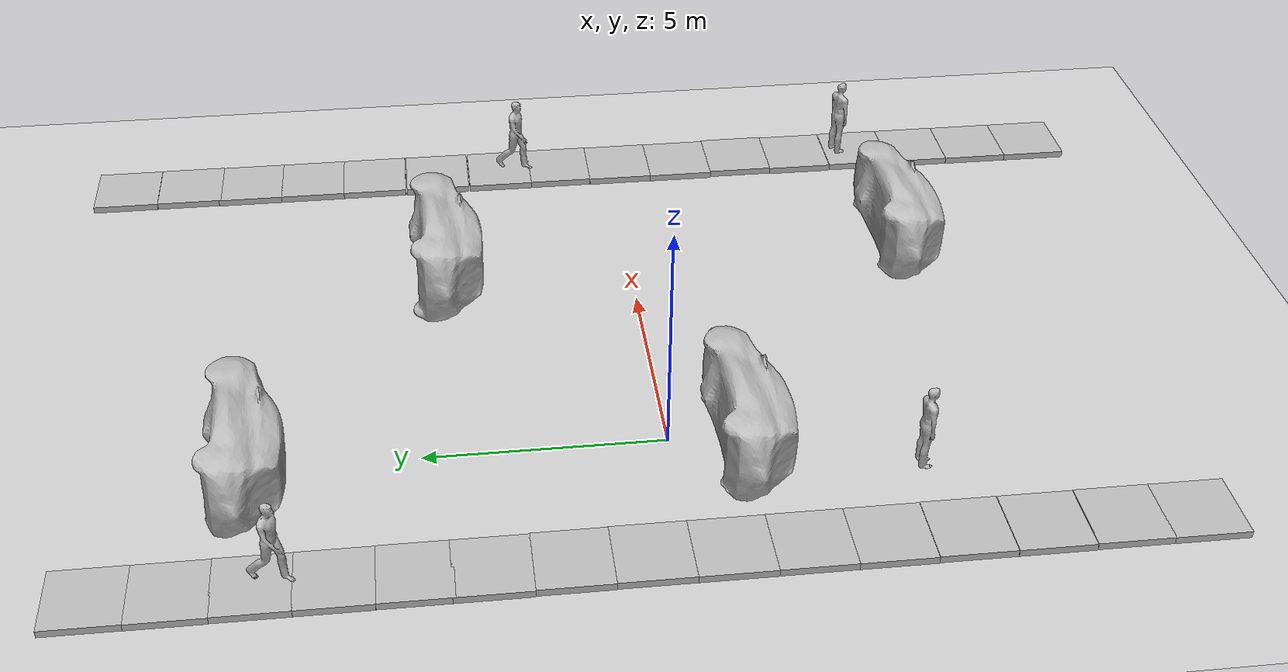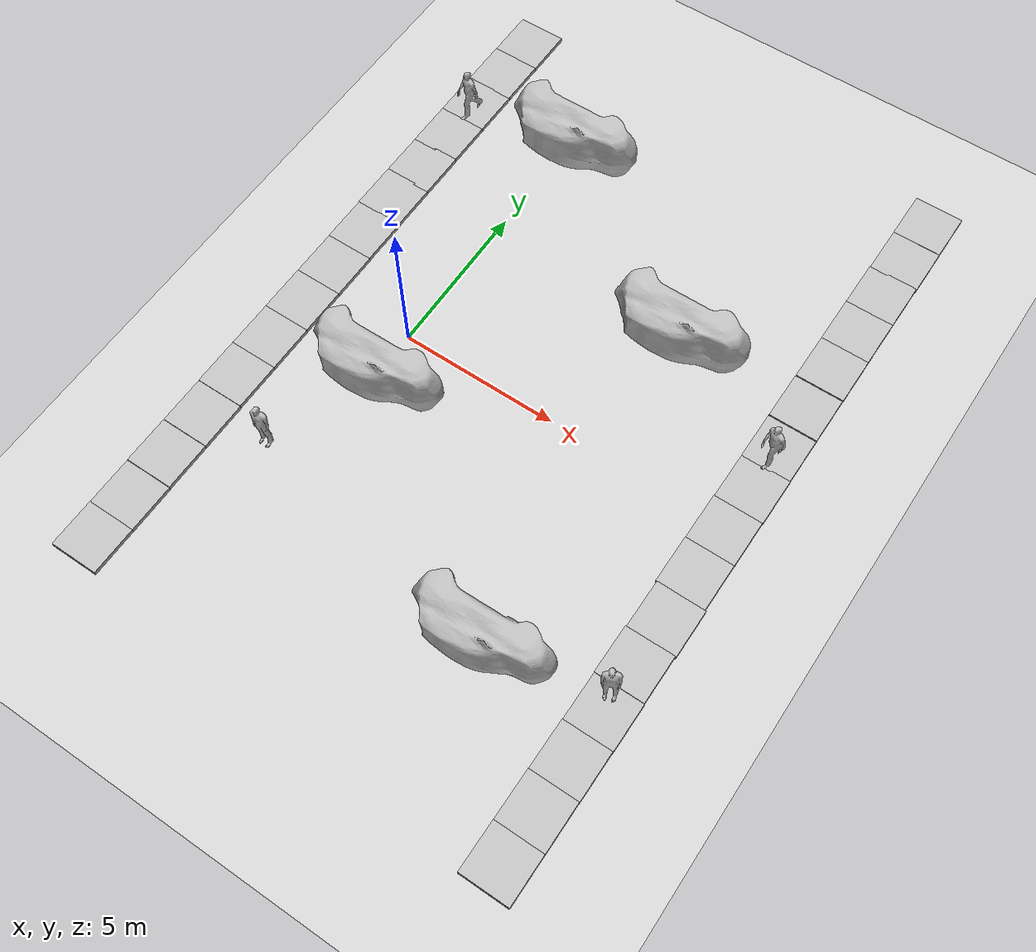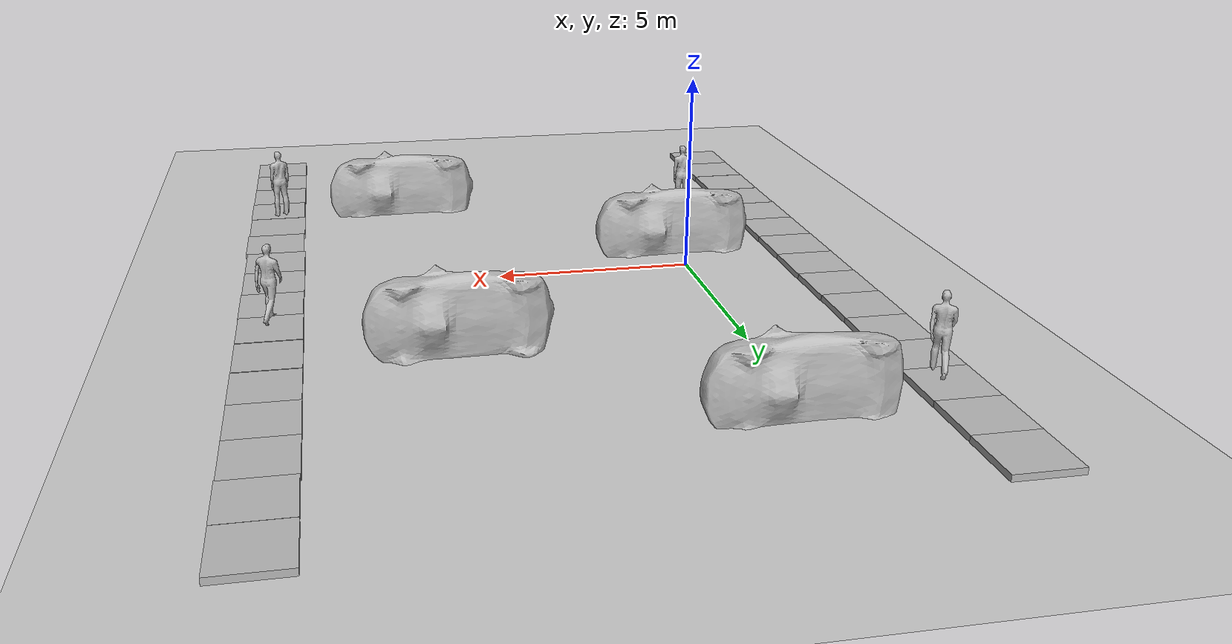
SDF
<sdf version="1.7">
 <world name="default">
  <light name="sun" type="directional">
   <pose>0 0 10 0 -0 0</pose>
   <diffuse>0.8 0.8 0.8 1</diffuse>
   <specular>0.2 0.2 0.2 1</specular>
   <attenuation>
    <range>1000</range>
    <constant>0.9</constant>
    <linear>0.01</linear>
    <quadratic>0.001</quadratic>
   </attenuation>
   <direction>-0.5 0.1 -0.9</direction>
   <spot><inner_angle>0</inner_angle><outer_angle>0</outer_angle><falloff>0</falloff></spot>
  </light>
  <model name="ground_plane">
   <static>1</static>
   <link name="link">
    <collision name="collision">
     <geometry><plane><normal>0 0 1</normal><size>100 100</size></plane></geometry>
     <surface>
      <contact><collide_bitmask>65535</collide_bitmask></contact>
      <friction><ode><mu>100</mu><mu2>50</mu2></ode></friction>
     </surface>
    </collision>
    <visual name="visual">
     <cast_shadows>0</cast_shadows>
     <geometry><plane><normal>0 0 1</normal><size>100 100</size></plane></geometry>
     <material>
      <script><uri>file://media/materials/scripts/gazebo.material</uri><name>Gazebo/Grey</name></script>
     </material>
    </visual>
   </link>
  </model>
  <gravity>0 0 -9.8</gravity>
  <magnetic_field>6e-06 2.3e-05 -4.2e-05</magnetic_field>
  <atmosphere type="adiabatic"/>
  <physics type="ode">
   <max_step_size>0.001</max_step_size>
   <real_time_factor>1</real_time_factor>
   <real_time_update_rate>1000</real_time_update_rate>
  </physics>
  <scene><ambient>0.4 0.4 0.4 1</ambient><background>0.7 0.7 0.7 1</background><shadows>1</shadows></scene>
  <audio><device>default</device></audio>
  <spherical_coordinates>
   <surface_model>EARTH_WGS84</surface_model>
   <latitude_deg>0</latitude_deg>
   <longitude_deg>0</longitude_deg>
   <elevation>0</elevation>
   <heading_deg>0</heading_deg>
  </spherical_coordinates>
  <model name="car">
   <static>1</static>
   <link name="link">
    <collision name="collision">
     <geometry><mesh><scale>2 2 2</scale><uri>model://car/meshes/car.obj</uri></mesh></geometry>
    </collision>
    <visual name="visual">
     <geometry><mesh><scale>2 2 2</scale><uri>model://car/meshes/car.obj</uri></mesh></geometry>
    </visual>
   </link>
   <pose>0.108995 -0.745607 0.66087 1.60298 -0 0</pose>
  </model>
  <model name="car_clone">
   <static>1</static>
   <link name="link">
    <collision name="collision">
     <geometry><mesh><scale>2 2 2</scale><uri>model://car/meshes/car.obj</uri></mesh></geometry>
    </collision>
    <visual name="visual">
     <geometry><mesh><scale>2 2 2</scale><uri>model://car/meshes/car.obj</uri></mesh></geometry>
    </visual>
   </link>
   <pose>7.1852 -5.65099 0.647097 1.60298 -0 0</pose>
  </model>
  <model name="car_clone_0">
   <static>1</static>
   <link name="link">
    <collision name="collision">
     <geometry><mesh><scale>2 2 2</scale><uri>model://car/meshes/car.obj</uri></mesh></geometry>
    </collision>
    <visual name="visual">
     <geometry><mesh><scale>2 2 2</scale><uri>model://car/meshes/car.obj</uri></mesh></geometry>
    </visual>
   </link>
   <pose>6.63545 5.07193 0.797903 1.58582 -0 0</pose>
  </model>
  <model name="car_clone_0_clone">
   <static>1</static>
   <link name="link">
    <collision name="collision">
     <geometry><mesh><scale>2 2 2</scale><uri>model://car/meshes/car.obj</uri></mesh></geometry>
    </collision>
    <visual name="visual">
     <geometry><mesh><scale>2 2 2</scale><uri>model://car/meshes/car.obj</uri></mesh></geometry>
    </visual>
   </link>
   <pose>0.201395 9.34131 0.65244 1.60298 -0 0</pose>
  </model>
  <model name="walkway_metal_straight">
   <static>1</static>
   <link name="link">
    <collision name="collision">
     <pose>0 0.762 0.076075 0 -0 0</pose>
     <geometry><box><size>1.524 1.524 0.15215</size></box></geometry>
    </collision>
    <visual name="visual">
     <geometry>
      <mesh><scale>0.001 0.001 0.001</scale><uri>model://walkway_metal_straight/meshes/mesh.obj</uri></mesh>
     </geometry>
    </visual>
   </link>
   <pose>10.7625 5.09804 0 0 -0 0</pose>
  </model>
  <model name="walkway_metal_straight_clone">
   <static>1</static>
   <link name="link">
    <collision name="collision">
     <pose>0 0.762 0.076075 0 -0 0</pose>
     <geometry><box><size>1.524 1.524 0.15215</size></box></geometry>
    </collision>
    <visual name="visual">
     <geometry>
      <mesh><scale>0.001 0.001 0.001</scale><uri>model://walkway_metal_straight/meshes/mesh.obj</uri></mesh>
     </geometry>
    </visual>
   </link>
   <pose>10.7568 3.54542 0 0 -0 0</pose>
  </model>
  <model name="walkway_metal_straight_clone_0">
   <static>1</static>
   <link name="link">
    <collision name="collision">
     <pose>0 0.762 0.076075 0 -0 0</pose>
     <geometry><box><size>1.524 1.524 0.15215</size></box></geometry>
    </collision>
    <visual name="visual">
     <geometry>
      <mesh><scale>0.001 0.001 0.001</scale><uri>model://walkway_metal_straight/meshes/mesh.obj</uri></mesh>
     </geometry>
    </visual>
   </link>
   <pose>10.757 1.98988 0 0 -0 0</pose>
  </model>
  <model name="walkway_metal_straight_clone_1">
   <static>1</static>
   <link name="link">
    <collision name="collision">
     <pose>0 0.762 0.076075 0 -0 0</pose>
     <geometry><box><size>1.524 1.524 0.15215</size></box></geometry>
    </collision>
    <visual name="visual">
     <geometry>
      <mesh><scale>0.001 0.001 0.001</scale><uri>model://walkway_metal_straight/meshes/mesh.obj</uri></mesh>
     </geometry>
    </visual>
   </link>
   <pose>10.7643 0.507661 0 0 -0 0</pose>
  </model>
  <model name="walkway_metal_straight_clone_1_clone">
   <static>1</static>
   <link name="link">
    <collision name="collision">
     <pose>0 0.762 0.076075 0 -0 0</pose>
     <geometry><box><size>1.524 1.524 0.15215</size></box></geometry>
    </collision>
    <visual name="visual">
     <geometry>
      <mesh><scale>0.001 0.001 0.001</scale><uri>model://walkway_metal_straight/meshes/mesh.obj</uri></mesh>
     </geometry>
    </visual>
   </link>
   <pose>10.7497 -1.00004 0 0 -0 0</pose>
  </model>
  <model name="walkway_metal_straight_clone_1_clone_0">
   <static>1</static>
   <link name="link">
    <collision name="collision">
     <pose>0 0.762 0.076075 0 -0 0</pose>
     <geometry><box><size>1.524 1.524 0.15215</size></box></geometry>
    </collision>
    <visual name="visual">
     <geometry>
      <mesh><scale>0.001 0.001 0.001</scale><uri>model://walkway_metal_straight/meshes/mesh.obj</uri></mesh>
     </geometry>
    </visual>
   </link>
   <pose>10.7435 -2.51706 0 0 -0 0</pose>
  </model>
  <model name="walkway_metal_straight_clone_1_clone_1">
   <static>1</static>
   <link name="link">
    <collision name="collision">
     <pose>0 0.762 0.076075 0 -0 0</pose>
     <geometry><box><size>1.524 1.524 0.15215</size></box></geometry>
    </collision>
    <visual name="visual">
     <geometry>
      <mesh><scale>0.001 0.001 0.001</scale><uri>model://walkway_metal_straight/meshes/mesh.obj</uri></mesh>
     </geometry>
    </visual>
   </link>
   <pose>10.7838 -4.03653 0 0 -0 0</pose>
  </model>
  <model name="walkway_metal_straight_clone_1_clone_2">
   <static>1</static>
   <link name="link">
    <collision name="collision">
     <pose>0 0.762 0.076075 0 -0 0</pose>
     <geometry><box><size>1.524 1.524 0.15215</size></box></geometry>
    </collision>
    <visual name="visual">
     <geometry>
      <mesh><scale>0.001 0.001 0.001</scale><uri>model://walkway_metal_straight/meshes/mesh.obj</uri></mesh>
     </geometry>
    </visual>
   </link>
   <pose>10.7551 -5.55481 0 0 -0 0</pose>
  </model>
  <model name="walkway_metal_straight_clone_1_clone_3">
   <static>1</static>
   <link name="link">
    <collision name="collision">
     <pose>0 0.762 0.076075 0 -0 0</pose>
     <geometry><box><size>1.524 1.524 0.15215</size></box></geometry>
    </collision>
    <visual name="visual">
     <geometry>
      <mesh><scale>0.001 0.001 0.001</scale><uri>model://walkway_metal_straight/meshes/mesh.obj</uri></mesh>
     </geometry>
    </visual>
   </link>
   <pose>10.769 -7.08597 0 0 -0 0</pose>
  </model>
  <model name="walkway_metal_straight_clone_1_clone_4">
   <static>1</static>
   <link name="link">
    <collision name="collision">
     <pose>0 0.762 0.076075 0 -0 0</pose>
     <geometry><box><size>1.524 1.524 0.15215</size></box></geometry>
    </collision>
    <visual name="visual">
     <geometry>
      <mesh><scale>0.001 0.001 0.001</scale><uri>model://walkway_metal_straight/meshes/mesh.obj</uri></mesh>
     </geometry>
    </visual>
   </link>
   <pose>10.7569 -8.56796 0 0 -0 0</pose>
  </model>
  <model name="walkway_metal_straight_clone_1_clone_5">
   <static>1</static>
   <link name="link">
    <collision name="collision">
     <pose>0 0.762 0.076075 0 -0 0</pose>
     <geometry><box><size>1.524 1.524 0.15215</size></box></geometry>
    </collision>
    <visual name="visual">
     <geometry>
      <mesh><scale>0.001 0.001 0.001</scale><uri>model://walkway_metal_straight/meshes/mesh.obj</uri></mesh>
     </geometry>
    </visual>
   </link>
   <pose>10.7494 -10.0935 0 0 -0 0</pose>
  </model>
  <model name="walkway_metal_straight_clone_1_clone_6">
   <static>1</static>
   <link name="link">
    <collision name="collision">
     <pose>0 0.762 0.076075 0 -0 0</pose>
     <geometry><box><size>1.524 1.524 0.15215</size></box></geometry>
    </collision>
    <visual name="visual">
     <geometry>
      <mesh><scale>0.001 0.001 0.001</scale><uri>model://walkway_metal_straight/meshes/mesh.obj</uri></mesh>
     </geometry>
    </visual>
   </link>
   <pose>10.7466 -11.6175 0 0 -0 0</pose>
  </model>
  <light name="user_spot_light_2" type="spot">
   <pose>0.146558 -7.64628 1 0 -0 0</pose>
   <diffuse>0.5 0.5 0.5 1</diffuse>
   <specular>0.1 0.1 0.1 1</specular>
   <direction>0 0 -1</direction>
   <attenuation>
    <range>20</range>
    <constant>0.5</constant>
    <linear>0.01</linear>
    <quadratic>0.001</quadratic>
   </attenuation>
   <cast_shadows>0</cast_shadows>
   <spot><inner_angle>0.6</inner_angle><outer_angle>1</outer_angle><falloff>1</falloff></spot>
  </light>
  <model name="walkway_metal_straight_clone_2">
   <static>1</static>
   <link name="link">
    <collision name="collision">
     <pose>0 0.762 0.076075 0 -0 0</pose>
     <geometry><box><size>1.524 1.524 0.15215</size></box></geometry>
    </collision>
    <visual name="visual">
     <geometry>
      <mesh><scale>0.001 0.001 0.001</scale><uri>model://walkway_metal_straight/meshes/mesh.obj</uri></mesh>
     </geometry>
    </visual>
   </link>
   <pose>10.7601 6.61868 0 0 -0 0</pose>
  </model>
  <model name="walkway_metal_straight_clone_3">
   <static>1</static>
   <link name="link">
    <collision name="collision">
     <pose>0 0.762 0.076075 0 -0 0</pose>
     <geometry><box><size>1.524 1.524 0.15215</size></box></geometry>
    </collision>
    <visual name="visual">
     <geometry>
      <mesh><scale>0.001 0.001 0.001</scale><uri>model://walkway_metal_straight/meshes/mesh.obj</uri></mesh>
     </geometry>
    </visual>
   </link>
   <pose>10.7611 8.13541 0 0 -0 0</pose>
  </model>
  <model name="walkway_metal_straight_clone_3_clone">
   <static>1</static>
   <link name="link">
    <collision name="collision">
     <pose>0 0.762 0.076075 0 -0 0</pose>
     <geometry><box><size>1.524 1.524 0.15215</size></box></geometry>
    </collision>
    <visual name="visual">
     <geometry>
      <mesh><scale>0.001 0.001 0.001</scale><uri>model://walkway_metal_straight/meshes/mesh.obj</uri></mesh>
     </geometry>
    </visual>
   </link>
   <pose>10.7771 9.61259 0 0 -0 0</pose>
  </model>
  <model name="walkway_metal_straight_clone_3_clone_0">
   <static>1</static>
   <link name="link">
    <collision name="collision">
     <pose>0 0.762 0.076075 0 -0 0</pose>
     <geometry><box><size>1.524 1.524 0.15215</size></box></geometry>
    </collision>
    <visual name="visual">
     <geometry>
      <mesh><scale>0.001 0.001 0.001</scale><uri>model://walkway_metal_straight/meshes/mesh.obj</uri></mesh>
     </geometry>
    </visual>
   </link>
   <pose>10.7719 11.1421 0 0 -0 0</pose>
  </model>
  <model name="walkway_metal_straight_clone_3_clone_0_clone">
   <static>1</static>
   <link name="link">
    <collision name="collision">
     <pose>0 0.762 0.076075 0 -0 0</pose>
     <geometry><box><size>1.524 1.524 0.15215</size></box></geometry>
    </collision>
    <visual name="visual">
     <geometry>
      <mesh><scale>0.001 0.001 0.001</scale><uri>model://walkway_metal_straight/meshes/mesh.obj</uri></mesh>
     </geometry>
    </visual>
   </link>
   <pose>-3.34955 10.4785 0 0 -0 0</pose>
  </model>
  <model name="walkway_metal_straight_clone_3_clone_0_clone_clone">
   <static>1</static>
   <link name="link">
    <collision name="collision">
     <pose>0 0.762 0.076075 0 -0 0</pose>
     <geometry><box><size>1.524 1.524 0.15215</size></box></geometry>
    </collision>
    <visual name="visual">
     <geometry>
      <mesh><scale>0.001 0.001 0.001</scale><uri>model://walkway_metal_straight/meshes/mesh.obj</uri></mesh>
     </geometry>
    </visual>
   </link>
   <pose>-3.35481 8.95698 0 0 -0 0</pose>
  </model>
  <model name="walkway_metal_straight_clone_3_clone_0_clone_clone_0">
   <static>1</static>
   <link name="link">
    <collision name="collision">
     <pose>0 0.762 0.076075 0 -0 0</pose>
     <geometry><box><size>1.524 1.524 0.15215</size></box></geometry>
    </collision>
    <visual name="visual">
     <geometry>
      <mesh><scale>0.001 0.001 0.001</scale><uri>model://walkway_metal_straight/meshes/mesh.obj</uri></mesh>
     </geometry>
    </visual>
   </link>
   <pose>-3.34729 7.45777 0 0 -0 0</pose>
  </model>
  <model name="walkway_metal_straight_clone_3_clone_0_clone_clone_1">
   <static>1</static>
   <link name="link">
    <collision name="collision">
     <pose>0 0.762 0.076075 0 -0 0</pose>
     <geometry><box><size>1.524 1.524 0.15215</size></box></geometry>
    </collision>
    <visual name="visual">
     <geometry>
      <mesh><scale>0.001 0.001 0.001</scale><uri>model://walkway_metal_straight/meshes/mesh.obj</uri></mesh>
     </geometry>
    </visual>
   </link>
   <pose>-3.34426 5.95164 0 0 -0 0</pose>
  </model>
  <model name="walkway_metal_straight_clone_3_clone_0_clone_clone_2">
   <static>1</static>
   <link name="link">
    <collision name="collision">
     <pose>0 0.762 0.076075 0 -0 0</pose>
     <geometry><box><size>1.524 1.524 0.15215</size></box></geometry>
    </collision>
    <visual name="visual">
     <geometry>
      <mesh><scale>0.001 0.001 0.001</scale><uri>model://walkway_metal_straight/meshes/mesh.obj</uri></mesh>
     </geometry>
    </visual>
   </link>
   <pose>-3.33639 4.49253 0 0 -0 0</pose>
  </model>
  <model name="walkway_metal_straight_clone_3_clone_0_clone_clone_3">
   <static>1</static>
   <link name="link">
    <collision name="collision">
     <pose>0 0.762 0.076075 0 -0 0</pose>
     <geometry><box><size>1.524 1.524 0.15215</size></box></geometry>
    </collision>
    <visual name="visual">
     <geometry>
      <mesh><scale>0.001 0.001 0.001</scale><uri>model://walkway_metal_straight/meshes/mesh.obj</uri></mesh>
     </geometry>
    </visual>
   </link>
   <pose>-3.33677 3.03003 0 0 -0 0</pose>
  </model>
  <model name="walkway_metal_straight_clone_3_clone_0_clone_clone_4">
   <static>1</static>
   <link name="link">
    <collision name="collision">
     <pose>0 0.762 0.076075 0 -0 0</pose>
     <geometry><box><size>1.524 1.524 0.15215</size></box></geometry>
    </collision>
    <visual name="visual">
     <geometry>
      <mesh><scale>0.001 0.001 0.001</scale><uri>model://walkway_metal_straight/meshes/mesh.obj</uri></mesh>
     </geometry>
    </visual>
   </link>
   <pose>-3.31864 1.52703 0 0 -0 0</pose>
  </model>
  <model name="walkway_metal_straight_clone_3_clone_0_clone_clone_5">
   <static>1</static>
   <link name="link">
    <collision name="collision">
     <pose>0 0.762 0.076075 0 -0 0</pose>
     <geometry><box><size>1.524 1.524 0.15215</size></box></geometry>
    </collision>
    <visual name="visual">
     <geometry>
      <mesh><scale>0.001 0.001 0.001</scale><uri>model://walkway_metal_straight/meshes/mesh.obj</uri></mesh>
     </geometry>
    </visual>
   </link>
   <pose>-3.30742 0.010922 0 0 -0 0</pose>
  </model>
  <model name="walkway_metal_straight_clone_3_clone_0_clone_clone_6">
   <static>1</static>
   <link name="link">
    <collision name="collision">
     <pose>0 0.762 0.076075 0 -0 0</pose>
     <geometry><box><size>1.524 1.524 0.15215</size></box></geometry>
    </collision>
    <visual name="visual">
     <geometry>
      <mesh><scale>0.001 0.001 0.001</scale><uri>model://walkway_metal_straight/meshes/mesh.obj</uri></mesh>
     </geometry>
    </visual>
   </link>
   <pose>-3.30873 -1.51157 0 0 -0 0</pose>
  </model>
  <model name="walkway_metal_straight_clone_3_clone_0_clone_clone_7">
   <static>1</static>
   <link name="link">
    <collision name="collision">
     <pose>0 0.762 0.076075 0 -0 0</pose>
     <geometry><box><size>1.524 1.524 0.15215</size></box></geometry>
    </collision>
    <visual name="visual">
     <geometry>
      <mesh><scale>0.001 0.001 0.001</scale><uri>model://walkway_metal_straight/meshes/mesh.obj</uri></mesh>
     </geometry>
    </visual>
   </link>
   <pose>-3.30414 -3.03559 0 0 -0 0</pose>
  </model>
  <model name="walkway_metal_straight_clone_3_clone_0_clone_clone_8">
   <static>1</static>
   <link name="link">
    <collision name="collision">
     <pose>0 0.762 0.076075 0 -0 0</pose>
     <geometry><box><size>1.524 1.524 0.15215</size></box></geometry>
    </collision>
    <visual name="visual">
     <geometry>
      <mesh><scale>0.001 0.001 0.001</scale><uri>model://walkway_metal_straight/meshes/mesh.obj</uri></mesh>
     </geometry>
    </visual>
   </link>
   <pose>-3.30448 -4.55523 0 0 -0 0</pose>
  </model>
  <model name="walkway_metal_straight_clone_3_clone_0_clone_clone_9">
   <static>1</static>
   <link name="link">
    <collision name="collision">
     <pose>0 0.762 0.076075 0 -0 0</pose>
     <geometry><box><size>1.524 1.524 0.15215</size></box></geometry>
    </collision>
    <visual name="visual">
     <geometry>
      <mesh><scale>0.001 0.001 0.001</scale><uri>model://walkway_metal_straight/meshes/mesh.obj</uri></mesh>
     </geometry>
    </visual>
   </link>
   <pose>-3.29251 -6.08455 0 0 -0 0</pose>
  </model>
  <model name="walkway_metal_straight_clone_3_clone_0_clone_clone_10">
   <static>1</static>
   <link name="link">
    <collision name="collision">
     <pose>0 0.762 0.076075 0 -0 0</pose>
     <geometry><box><size>1.524 1.524 0.15215</size></box></geometry>
    </collision>
    <visual name="visual">
     <geometry>
      <mesh><scale>0.001 0.001 0.001</scale><uri>model://walkway_metal_straight/meshes/mesh.obj</uri></mesh>
     </geometry>
    </visual>
   </link>
   <pose>-3.29313 -7.61698 0 0 -0 0</pose>
  </model>
  <model name="walkway_metal_straight_clone_3_clone_0_clone_clone_11">
   <static>1</static>
   <link name="link">
    <collision name="collision">
     <pose>0 0.762 0.076075 0 -0 0</pose>
     <geometry><box><size>1.524 1.524 0.15215</size></box></geometry>
    </collision>
    <visual name="visual">
     <geometry>
      <mesh><scale>0.001 0.001 0.001</scale><uri>model://walkway_metal_straight/meshes/mesh.obj</uri></mesh>
     </geometry>
    </visual>
   </link>
   <pose>-3.28217 -9.15153 0 0 -0 0</pose>
  </model>
  <model name="walkway_metal_straight_clone_3_clone_0_clone_clone_12">
   <static>1</static>
   <link name="link">
    <collision name="collision">
     <pose>0 0.762 0.076075 0 -0 0</pose>
     <geometry><box><size>1.524 1.524 0.15215</size></box></geometry>
    </collision>
    <visual name="visual">
     <geometry>
      <mesh><scale>0.001 0.001 0.001</scale><uri>model://walkway_metal_straight/meshes/mesh.obj</uri></mesh>
     </geometry>
    </visual>
   </link>
   <pose>-3.28562 -10.6639 0 0 -0 0</pose>
  </model>
  <light name="user_spot_light_0" type="spot">
   <pose>0.017133 -3.66954 1 0 -0 0</pose>
   <diffuse>0.5 0.5 0.5 1</diffuse>
   <specular>0.1 0.1 0.1 1</specular>
   <direction>0 0 -1</direction>
   <attenuation>
    <range>20</range>
    <constant>0.5</constant>
    <linear>0.01</linear>
    <quadratic>0.001</quadratic>
   </attenuation>
   <cast_shadows>0</cast_shadows>
   <spot><inner_angle>0.6</inner_angle><outer_angle>1</outer_angle><falloff>1</falloff></spot>
  </light>
  <light name="user_spot_light_1" type="spot">
   <pose>6.91556 2.03476 1 0 -0 0</pose>
   <diffuse>0.5 0.5 0.5 1</diffuse>
   <specular>0.1 0.1 0.1 1</specular>
   <direction>0 0 -1</direction>
   <attenuation>
    <range>20</range>
    <constant>0.5</constant>
    <linear>0.01</linear>
    <quadratic>0.001</quadratic>
   </attenuation>
   <cast_shadows>0</cast_shadows>
   <spot><inner_angle>0.6</inner_angle><outer_angle>1</outer_angle><falloff>1</falloff></spot>
  </light>
  <light name="user_spot_light_0_clone" type="spot">
   <pose>0.122327 7.91081 0.754651 0 -0 0</pose>
   <diffuse>0.498039 0.498039 0.498039 1</diffuse>
   <specular>0.0980392 0.0980392 0.0980392 1</specular>
   <direction>0 0 -1</direction>
   <attenuation>
    <range>20</range>
    <constant>0.5</constant>
    <linear>0.01</linear>
    <quadratic>0.001</quadratic>
   </attenuation>
   <cast_shadows>0</cast_shadows>
   <spot><inner_angle>0.6</inner_angle><outer_angle>1</outer_angle><falloff>1</falloff></spot>
  </light>
  <model name="person_walking">
   <link name="link">
    <inertial>
     <pose>0 0 0.95 0 -0 0</pose>
     <mass>80</mass>
     <inertia><ixx>27.82</ixx><ixy>0</ixy><ixz>0</ixz><iyy>24.88</iyy><iyz>0</iyz><izz>4.57</izz></inertia>
    </inertial>
    <collision name="bottom">
     <pose>0 0 0.01 0 -0 0</pose>
     <geometry><box><size>0.35 0.75 0.02</size></box></geometry>
    </collision>
    <collision name="person">
     <pose>0 0 -0.02 0 -0 0</pose>
     <geometry><mesh><uri>model://person_walking/meshes/walking.dae</uri></mesh></geometry>
    </collision>
    <visual name="visual">
     <pose>0 0 -0.02 0 -0 0</pose>
     <geometry><mesh><uri>model://person_walking/meshes/walking.dae</uri></mesh></geometry>
    </visual>
   </link>
   <pose>10.7483 2.32691 0.15215 1e-06 -1e-06 -0.467065</pose>
  </model>
  <model name="person_standing">
   <link name="link">
    <inertial>
     <pose>0 -0.1 0.95 0 -0 0</pose>
     <mass>80</mass>
     <inertia><ixx>24.88</ixx><ixy>0</ixy><ixz>0</ixz><iyy>25.73</iyy><iyz>0</iyz><izz>2.48</izz></inertia>
    </inertial>
    <collision name="bottom">
     <pose>0 -0.1 0.01 0 -0 0</pose>
     <geometry><box><size>0.5 0.35 0.02</size></box></geometry>
    </collision>
    <collision name="person">
     <pose>0 0 0.02 0.04 -0 0</pose>
     <geometry><mesh><uri>model://person_standing/meshes/standing.dae</uri></mesh></geometry>
    </collision>
    <visual name="visual">
     <pose>0 0 0.02 0.04 -0 0</pose>
     <geometry><mesh><uri>model://person_standing/meshes/standing.dae</uri></mesh></geometry>
    </visual>
   </link>
   <pose>10.6327 -5.79113 0.152215 -0.00086 1e-06 0.379194</pose>
  </model>
  <model name="person_standing_clone">
   <link name="link">
    <inertial>
     <pose>0 -0.1 0.95 0 -0 0</pose>
     <mass>80</mass>
     <inertia><ixx>24.88</ixx><ixy>0</ixy><ixz>0</ixz><iyy>25.73</iyy><iyz>0</iyz><izz>2.48</izz></inertia>
    </inertial>
    <collision name="bottom">
     <pose>0 -0.1 0.01 0 -0 0</pose>
     <geometry><box><size>0.5 0.35 0.02</size></box></geometry>
    </collision>
    <collision name="person">
     <pose>0 0 0.02 0.04 -0 0</pose>
     <geometry><mesh><uri>model://person_standing/meshes/standing.dae</uri></mesh></geometry>
    </collision>
    <visual name="visual">
     <pose>0 0 0.02 0.04 -0 0</pose>
     <geometry><mesh><uri>model://person_standing/meshes/standing.dae</uri></mesh></geometry>
    </visual>
   </link>
   <pose>-1.28077 -4.89021 -0 -1e-06 1e-06 -0.000847</pose>
  </model>
  <model name="person_walking_clone">
   <link name="link">
    <inertial>
     <pose>0 0 0.95 0 -0 0</pose>
     <mass>80</mass>
     <inertia><ixx>27.82</ixx><ixy>0</ixy><ixz>0</ixz><iyy>24.88</iyy><iyz>0</iyz><izz>4.57</izz></inertia>
    </inertial>
    <collision name="bottom">
     <pose>0 0 0.01 0 -0 0</pose>
     <geometry><box><size>0.35 0.75 0.02</size></box></geometry>
    </collision>
    <collision name="person">
     <pose>0 0 -0.02 0 -0 0</pose>
     <geometry><mesh><uri>model://person_walking/meshes/walking.dae</uri></mesh></geometry>
    </collision>
    <visual name="visual">
     <pose>0 0 -0.02 0 -0 0</pose>
     <geometry><mesh><uri>model://person_walking/meshes/walking.dae</uri></mesh></geometry>
    </visual>
   </link>
   <pose>-3.26371 7.81692 0.152149 -2e-06 -0 -0.467352</pose>
  </model>
 </world>
</sdf>
